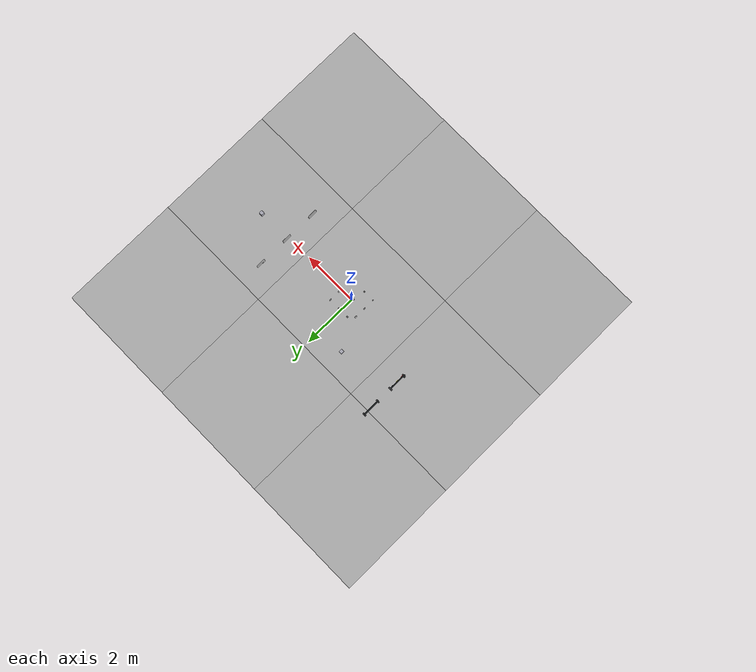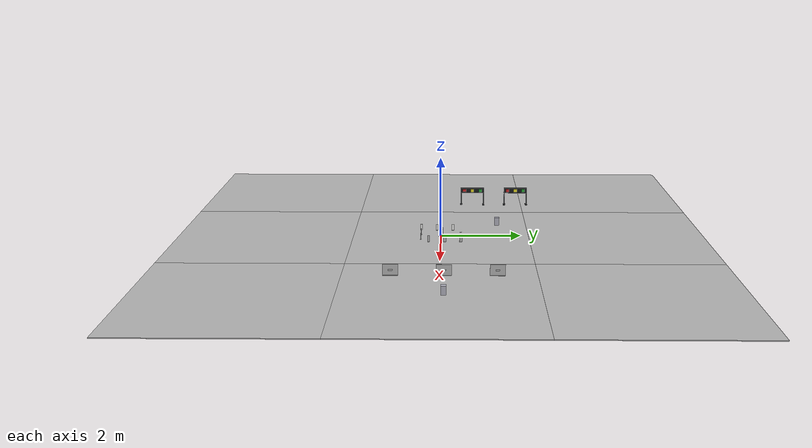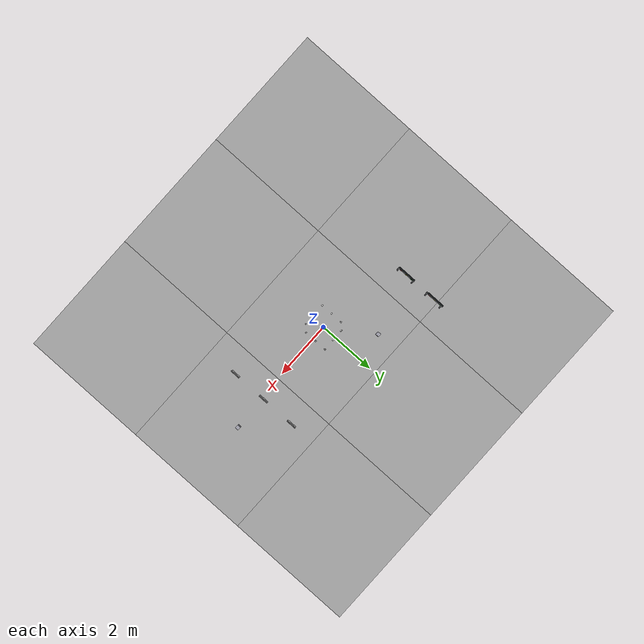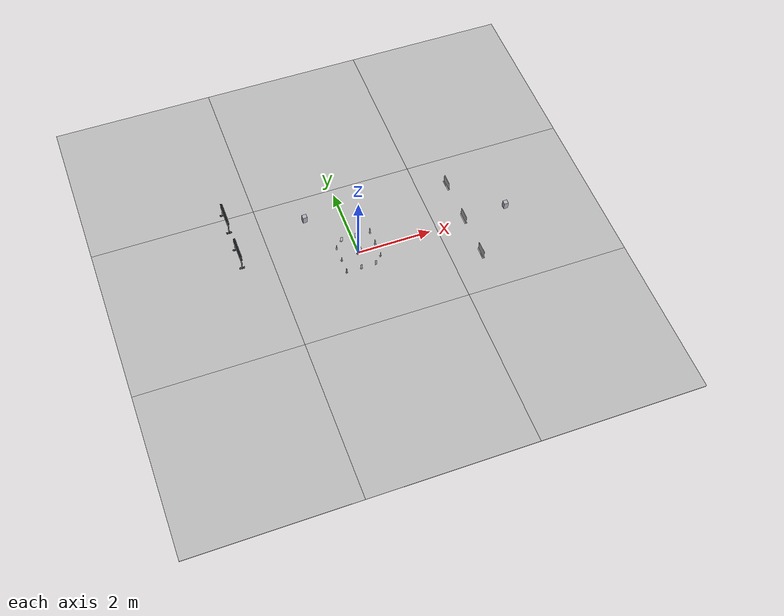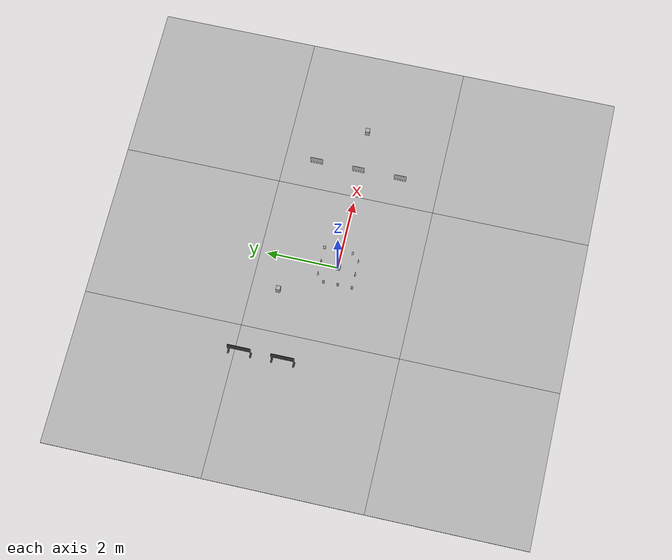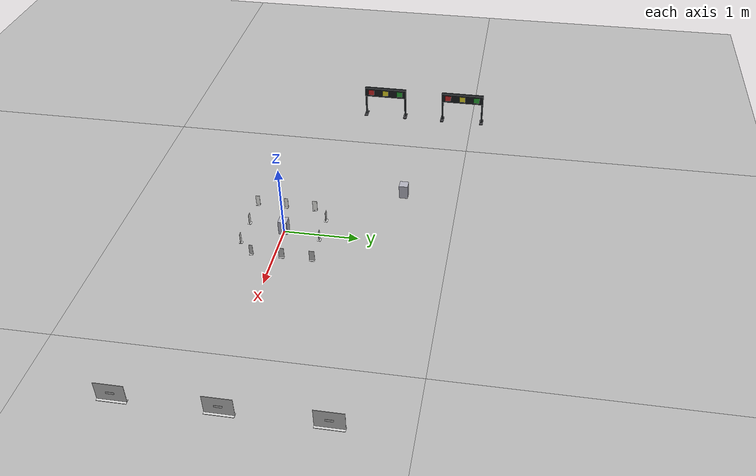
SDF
<?xml version="1.0" ?>
<!--
  采集专用世界 (auto-generated by tools/build_collect_world.py)

  工位 A 立牌圈: 10 个立牌围成圈, 正面全部朝圈心, 小车在圈心转圈拍
  工位 B 红绿灯: 2 个灯正面朝 +x 摆一排, 车从 +x 侧固定距离正对拍
  工位 C 车牌:   3 辆车车牌朝 +x 摆一排, 车从 +x 侧固定距离正对拍
-->
<sdf version="1.6">
  <world name="collect">

    <!-- 物理步进: 与比赛场地保持一致 (见 build_arena.py / issue #5) -->
    <physics name="collect_physics" default="0" type="ode">
      <max_step_size>0.002</max_step_size>
      <real_time_factor>1.0</real_time_factor>
      <real_time_update_rate>500</real_time_update_rate>
      <ode><solver><type>quick</type><iters>50</iters><sor>1.3</sor>
      </solver></ode>
    </physics>

    <include><uri>model://sun</uri></include>

    <!-- ================= 地面: 3x3 平铺, 与比赛场地同观感 ============ -->
    <model name="floor_0_0">
          <static>true</static>
          <pose>-4.400 -4.400 -0.0100 0 0 0</pose>
          <link name="link">
            <collision name="collision">
              <geometry><box><size>4.4 4.4 0.0200</size></box></geometry>
              <surface><friction><ode><mu>1.0</mu><mu2>1.0</mu2></ode></friction>
                <contact><ode><kp>1e10</kp><kd>1</kd></ode></contact></surface>
            </collision>
            <visual name="visual">
              <geometry><box><size>4.4 4.4 0.0200</size></box></geometry>
              <material><script>
                <uri>file://media/materials/scripts/arena.material</uri>
                <name>Arena/Floor</name>
              </script></material>
            </visual>
          </link>
        </model>
    <model name="floor_0_1">
          <static>true</static>
          <pose>-4.400 0.000 -0.0100 0 0 0</pose>
          <link name="link">
            <collision name="collision">
              <geometry><box><size>4.4 4.4 0.0200</size></box></geometry>
              <surface><friction><ode><mu>1.0</mu><mu2>1.0</mu2></ode></friction>
                <contact><ode><kp>1e10</kp><kd>1</kd></ode></contact></surface>
            </collision>
            <visual name="visual">
              <geometry><box><size>4.4 4.4 0.0200</size></box></geometry>
              <material><script>
                <uri>file://media/materials/scripts/arena.material</uri>
                <name>Arena/Floor</name>
              </script></material>
            </visual>
          </link>
        </model>
    <model name="floor_0_2">
          <static>true</static>
          <pose>-4.400 4.400 -0.0100 0 0 0</pose>
          <link name="link">
            <collision name="collision">
              <geometry><box><size>4.4 4.4 0.0200</size></box></geometry>
              <surface><friction><ode><mu>1.0</mu><mu2>1.0</mu2></ode></friction>
                <contact><ode><kp>1e10</kp><kd>1</kd></ode></contact></surface>
            </collision>
            <visual name="visual">
              <geometry><box><size>4.4 4.4 0.0200</size></box></geometry>
              <material><script>
                <uri>file://media/materials/scripts/arena.material</uri>
                <name>Arena/Floor</name>
              </script></material>
            </visual>
          </link>
        </model>
    <model name="floor_1_0">
          <static>true</static>
          <pose>0.000 -4.400 -0.0100 0 0 0</pose>
          <link name="link">
            <collision name="collision">
              <geometry><box><size>4.4 4.4 0.0200</size></box></geometry>
              <surface><friction><ode><mu>1.0</mu><mu2>1.0</mu2></ode></friction>
                <contact><ode><kp>1e10</kp><kd>1</kd></ode></contact></surface>
            </collision>
            <visual name="visual">
              <geometry><box><size>4.4 4.4 0.0200</size></box></geometry>
              <material><script>
                <uri>file://media/materials/scripts/arena.material</uri>
                <name>Arena/Floor</name>
              </script></material>
            </visual>
          </link>
        </model>
    <model name="floor_1_1">
          <static>true</static>
          <pose>0.000 0.000 -0.0100 0 0 0</pose>
          <link name="link">
            <collision name="collision">
              <geometry><box><size>4.4 4.4 0.0200</size></box></geometry>
              <surface><friction><ode><mu>1.0</mu><mu2>1.0</mu2></ode></friction>
                <contact><ode><kp>1e10</kp><kd>1</kd></ode></contact></surface>
            </collision>
            <visual name="visual">
              <geometry><box><size>4.4 4.4 0.0200</size></box></geometry>
              <material><script>
                <uri>file://media/materials/scripts/arena.material</uri>
                <name>Arena/Floor</name>
              </script></material>
            </visual>
          </link>
        </model>
    <model name="floor_1_2">
          <static>true</static>
          <pose>0.000 4.400 -0.0100 0 0 0</pose>
          <link name="link">
            <collision name="collision">
              <geometry><box><size>4.4 4.4 0.0200</size></box></geometry>
              <surface><friction><ode><mu>1.0</mu><mu2>1.0</mu2></ode></friction>
                <contact><ode><kp>1e10</kp><kd>1</kd></ode></contact></surface>
            </collision>
            <visual name="visual">
              <geometry><box><size>4.4 4.4 0.0200</size></box></geometry>
              <material><script>
                <uri>file://media/materials/scripts/arena.material</uri>
                <name>Arena/Floor</name>
              </script></material>
            </visual>
          </link>
        </model>
    <model name="floor_2_0">
          <static>true</static>
          <pose>4.400 -4.400 -0.0100 0 0 0</pose>
          <link name="link">
            <collision name="collision">
              <geometry><box><size>4.4 4.4 0.0200</size></box></geometry>
              <surface><friction><ode><mu>1.0</mu><mu2>1.0</mu2></ode></friction>
                <contact><ode><kp>1e10</kp><kd>1</kd></ode></contact></surface>
            </collision>
            <visual name="visual">
              <geometry><box><size>4.4 4.4 0.0200</size></box></geometry>
              <material><script>
                <uri>file://media/materials/scripts/arena.material</uri>
                <name>Arena/Floor</name>
              </script></material>
            </visual>
          </link>
        </model>
    <model name="floor_2_1">
          <static>true</static>
          <pose>4.400 0.000 -0.0100 0 0 0</pose>
          <link name="link">
            <collision name="collision">
              <geometry><box><size>4.4 4.4 0.0200</size></box></geometry>
              <surface><friction><ode><mu>1.0</mu><mu2>1.0</mu2></ode></friction>
                <contact><ode><kp>1e10</kp><kd>1</kd></ode></contact></surface>
            </collision>
            <visual name="visual">
              <geometry><box><size>4.4 4.4 0.0200</size></box></geometry>
              <material><script>
                <uri>file://media/materials/scripts/arena.material</uri>
                <name>Arena/Floor</name>
              </script></material>
            </visual>
          </link>
        </model>
    <model name="floor_2_2">
          <static>true</static>
          <pose>4.400 4.400 -0.0100 0 0 0</pose>
          <link name="link">
            <collision name="collision">
              <geometry><box><size>4.4 4.4 0.0200</size></box></geometry>
              <surface><friction><ode><mu>1.0</mu><mu2>1.0</mu2></ode></friction>
                <contact><ode><kp>1e10</kp><kd>1</kd></ode></contact></surface>
            </collision>
            <visual name="visual">
              <geometry><box><size>4.4 4.4 0.0200</size></box></geometry>
              <material><script>
                <uri>file://media/materials/scripts/arena.material</uri>
                <name>Arena/Floor</name>
              </script></material>
            </visual>
          </link>
        </model>
    <include><uri>model://collect_rig_1</uri><name>collect_rig_1</name><pose>0.000 0.000 0 0 0 0.000000</pose></include>
    <include><uri>model://collect_rig_2</uri><name>collect_rig_2</name><pose>-1.000 1.450 0 0 0 0.000000</pose></include>
    <include><uri>model://collect_rig_3</uri><name>collect_rig_3</name><pose>4.200 0.100 0 0 0 3.141593</pose></include>

    <!-- ================= A 立牌圈 (正面全部朝圈心) ================= -->
    <include><uri>model://standee_c01</uri><name>ring_01</name><pose>-0.3000 0.5000 0 0 0 -1.570796</pose></include>
    <include><uri>model://standee_c02</uri><name>ring_02</name><pose>0.1000 0.5000 0 0 0 -1.570796</pose></include>
    <include><uri>model://standee_c03</uri><name>ring_03</name><pose>0.5000 0.5000 0 0 0 -3.141593</pose></include>
    <include><uri>model://standee_c04</uri><name>ring_04</name><pose>0.5000 0.1000 0 0 0 -3.141593</pose></include>
    <include><uri>model://standee_c05</uri><name>ring_05</name><pose>0.5000 -0.3000 0 0 0 -3.141593</pose></include>
    <include><uri>model://standee_c06</uri><name>ring_06</name><pose>0.3000 -0.5000 0 0 0 1.570796</pose></include>
    <include><uri>model://standee_c07</uri><name>ring_07</name><pose>-0.1000 -0.5000 0 0 0 1.570796</pose></include>
    <include><uri>model://standee_c08</uri><name>ring_08</name><pose>-0.5000 -0.5000 0 0 0 -0.000000</pose></include>
    <include><uri>model://standee_F1</uri><name>ring_09</name><pose>-0.5000 -0.1000 0 0 0 -0.000000</pose></include>
    <include><uri>model://standee_F2</uri><name>ring_10</name><pose>-0.5000 0.3000 0 0 0 -0.000000</pose></include>

    <!-- ================= B 红绿灯 (正面朝 +x) ==================== -->
    <include><uri>model://traffic_light_h</uri><name>tl_top</name><pose>-3.000 2.050 0.002 0 0 0</pose></include>
    <include><uri>model://traffic_light_h</uri><name>tl_bot</name><pose>-3.000 0.850 0.002 0 0 0</pose></include>

    <!-- ================= C 车牌 (车牌朝 +x) ====================== -->
    <include><uri>model://car_1</uri><name>car_1</name><pose>3.000 -1.100 0 0 0 0.000000</pose></include>
    <include><uri>model://car_2</uri><name>car_2</name><pose>3.000 0.100 0 0 0 0.000000</pose></include>
    <include><uri>model://car_3</uri><name>car_3</name><pose>3.000 1.300 0 0 0 0.000000</pose></include>

  </world>
</sdf>

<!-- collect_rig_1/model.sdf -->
<sdf version="1.6">
  <model name="collect_rig_1">
    <static>false</static>
    <link name="link">
      <gravity>false</gravity>
      <inertial><mass>0.5</mass>
        <inertia><ixx>0.01</ixx><ixy>0</ixy><ixz>0</ixz>
                 <iyy>0.01</iyy><iyz>0</iyz><izz>0.01</izz></inertia></inertial>
      <visual name="cam_body">
        <pose>0 0 0.10 0 0 0</pose>
        <geometry><box><size>0.12 0.12 0.20</size></box></geometry>
        <material><ambient>0.6 0.6 0.65 1</ambient><diffuse>0.7 0.7 0.75 1</diffuse>
        </material>
      </visual>
      <sensor name="camera" type="camera">
        <always_on>true</always_on>
        <update_rate>15</update_rate>
        <visualize>false</visualize>
        <camera>
          <horizontal_fov>1.012291</horizontal_fov>
          <image><width>1280</width><height>960</height><format>R8G8B8</format></image>
          <clip><near>0.05</near><far>20</far></clip>
        </camera>
        <plugin name="camera_plugin" filename="libgazebo_ros_camera.so">
          <robotNamespace>/rig1</robotNamespace>
          <cameraName>camera</cameraName>
          <frameName>camera_link</frameName>
          <imageTopicName>rgb/image_raw</imageTopicName>
          <cameraInfoTopicName>rgb/camera_info</cameraInfoTopicName>
        </plugin>
      </sensor>
    </link>
  </model>
</sdf>

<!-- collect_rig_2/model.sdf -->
<sdf version="1.6">
  <model name="collect_rig_2">
    <static>false</static>
    <link name="link">
      <gravity>false</gravity>
      <inertial><mass>0.5</mass>
        <inertia><ixx>0.01</ixx><ixy>0</ixy><ixz>0</ixz>
                 <iyy>0.01</iyy><iyz>0</iyz><izz>0.01</izz></inertia></inertial>
      <visual name="cam_body">
        <pose>0 0 0.10 0 0 0</pose>
        <geometry><box><size>0.12 0.12 0.20</size></box></geometry>
        <material><ambient>0.6 0.6 0.65 1</ambient><diffuse>0.7 0.7 0.75 1</diffuse>
        </material>
      </visual>
      <sensor name="camera" type="camera">
        <always_on>true</always_on>
        <update_rate>15</update_rate>
        <visualize>false</visualize>
        <camera>
          <horizontal_fov>1.012291</horizontal_fov>
          <image><width>1280</width><height>960</height><format>R8G8B8</format></image>
          <clip><near>0.05</near><far>20</far></clip>
        </camera>
        <plugin name="camera_plugin" filename="libgazebo_ros_camera.so">
          <robotNamespace>/rig2</robotNamespace>
          <cameraName>camera</cameraName>
          <frameName>camera_link</frameName>
          <imageTopicName>rgb/image_raw</imageTopicName>
          <cameraInfoTopicName>rgb/camera_info</cameraInfoTopicName>
        </plugin>
      </sensor>
    </link>
  </model>
</sdf>

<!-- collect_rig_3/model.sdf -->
<sdf version="1.6">
  <model name="collect_rig_3">
    <static>false</static>
    <link name="link">
      <gravity>false</gravity>
      <inertial><mass>0.5</mass>
        <inertia><ixx>0.01</ixx><ixy>0</ixy><ixz>0</ixz>
                 <iyy>0.01</iyy><iyz>0</iyz><izz>0.01</izz></inertia></inertial>
      <visual name="cam_body">
        <pose>0 0 0.10 0 0 0</pose>
        <geometry><box><size>0.12 0.12 0.20</size></box></geometry>
        <material><ambient>0.6 0.6 0.65 1</ambient><diffuse>0.7 0.7 0.75 1</diffuse>
        </material>
      </visual>
      <sensor name="camera" type="camera">
        <always_on>true</always_on>
        <update_rate>15</update_rate>
        <visualize>false</visualize>
        <camera>
          <horizontal_fov>1.012291</horizontal_fov>
          <image><width>1280</width><height>960</height><format>R8G8B8</format></image>
          <clip><near>0.05</near><far>20</far></clip>
        </camera>
        <plugin name="camera_plugin" filename="libgazebo_ros_camera.so">
          <robotNamespace>/rig3</robotNamespace>
          <cameraName>camera</cameraName>
          <frameName>camera_link</frameName>
          <imageTopicName>rgb/image_raw</imageTopicName>
          <cameraInfoTopicName>rgb/camera_info</cameraInfoTopicName>
        </plugin>
      </sensor>
    </link>
  </model>
</sdf>

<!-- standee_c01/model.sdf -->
<sdf version="1.7">
  <model name="standee_c01">
    <static>true</static>
    <link name="link">
      <visual name="board">
        <pose>0 0 0.0790 0 0 0</pose>
        <geometry><box><size>0.0050 0.0661 0.1500</size></box></geometry>
        <material><ambient>0.94 0.94 0.93 1</ambient><diffuse>0.94 0.94 0.93 1</diffuse></material>
      </visual>
      <visual name="art">
        <pose>-0.0020 0 0.0790 0 0 0</pose>
        <geometry><box><size>0.0012 0.0661 0.1500</size></box></geometry>
        <material>
          <script>
            <uri>model://standee_c01/materials/scripts</uri>
            <uri>model://standee_c01/materials/textures</uri>
            <name>Standee/c01</name>
          </script>
        </material>
      </visual>
      <visual name="base">
        <pose>0 0 0.0020 0 0 0</pose>
        <geometry><box><size>0.0450 0.0661 0.0040</size></box></geometry>
        <material><ambient>0.92 0.92 0.92 1</ambient><diffuse>0.92 0.92 0.92 1</diffuse></material>
      </visual>
      <collision name="col">
        <pose>0 0 0.0790 0 0 0</pose>
        <geometry><box><size>0.0050 0.0500 0.1500</size></box></geometry>
      </collision>
      <collision name="base_c">
        <pose>0 0 0.0020 0 0 0</pose>
        <geometry><box><size>0.0450 0.0661 0.0040</size></box></geometry>
      </collision>
    </link>
  </model>
</sdf>

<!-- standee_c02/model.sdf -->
<sdf version="1.7">
  <model name="standee_c02">
    <static>true</static>
    <link name="link">
      <visual name="board">
        <pose>0 0 0.0790 0 0 0</pose>
        <geometry><box><size>0.0050 0.0542 0.1500</size></box></geometry>
        <material><ambient>0.94 0.94 0.93 1</ambient><diffuse>0.94 0.94 0.93 1</diffuse></material>
      </visual>
      <visual name="art">
        <pose>-0.0020 0 0.0790 0 0 0</pose>
        <geometry><box><size>0.0012 0.0542 0.1500</size></box></geometry>
        <material>
          <script>
            <uri>model://standee_c02/materials/scripts</uri>
            <uri>model://standee_c02/materials/textures</uri>
            <name>Standee/c02</name>
          </script>
        </material>
      </visual>
      <visual name="base">
        <pose>0 0 0.0020 0 0 0</pose>
        <geometry><box><size>0.0450 0.0542 0.0040</size></box></geometry>
        <material><ambient>0.92 0.92 0.92 1</ambient><diffuse>0.92 0.92 0.92 1</diffuse></material>
      </visual>
      <collision name="col">
        <pose>0 0 0.0790 0 0 0</pose>
        <geometry><box><size>0.0050 0.0500 0.1500</size></box></geometry>
      </collision>
      <collision name="base_c">
        <pose>0 0 0.0020 0 0 0</pose>
        <geometry><box><size>0.0450 0.0542 0.0040</size></box></geometry>
      </collision>
    </link>
  </model>
</sdf>

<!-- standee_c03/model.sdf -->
<sdf version="1.7">
  <model name="standee_c03">
    <static>true</static>
    <link name="link">
      <visual name="board">
        <pose>0 0 0.0790 0 0 0</pose>
        <geometry><box><size>0.0050 0.0702 0.1500</size></box></geometry>
        <material><ambient>0.94 0.94 0.93 1</ambient><diffuse>0.94 0.94 0.93 1</diffuse></material>
      </visual>
      <visual name="art">
        <pose>-0.0020 0 0.0790 0 0 0</pose>
        <geometry><box><size>0.0012 0.0702 0.1500</size></box></geometry>
        <material>
          <script>
            <uri>model://standee_c03/materials/scripts</uri>
            <uri>model://standee_c03/materials/textures</uri>
            <name>Standee/c03</name>
          </script>
        </material>
      </visual>
      <visual name="base">
        <pose>0 0 0.0020 0 0 0</pose>
        <geometry><box><size>0.0450 0.0702 0.0040</size></box></geometry>
        <material><ambient>0.92 0.92 0.92 1</ambient><diffuse>0.92 0.92 0.92 1</diffuse></material>
      </visual>
      <collision name="col">
        <pose>0 0 0.0790 0 0 0</pose>
        <geometry><box><size>0.0050 0.0500 0.1500</size></box></geometry>
      </collision>
      <collision name="base_c">
        <pose>0 0 0.0020 0 0 0</pose>
        <geometry><box><size>0.0450 0.0702 0.0040</size></box></geometry>
      </collision>
    </link>
  </model>
</sdf>

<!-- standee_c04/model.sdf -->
<sdf version="1.7">
  <model name="standee_c04">
    <static>true</static>
    <link name="link">
      <visual name="board">
        <pose>0 0 0.0790 0 0 0</pose>
        <geometry><box><size>0.0050 0.0703 0.1500</size></box></geometry>
        <material><ambient>0.94 0.94 0.93 1</ambient><diffuse>0.94 0.94 0.93 1</diffuse></material>
      </visual>
      <visual name="art">
        <pose>-0.0020 0 0.0790 0 0 0</pose>
        <geometry><box><size>0.0012 0.0703 0.1500</size></box></geometry>
        <material>
          <script>
            <uri>model://standee_c04/materials/scripts</uri>
            <uri>model://standee_c04/materials/textures</uri>
            <name>Standee/c04</name>
          </script>
        </material>
      </visual>
      <visual name="base">
        <pose>0 0 0.0020 0 0 0</pose>
        <geometry><box><size>0.0450 0.0703 0.0040</size></box></geometry>
        <material><ambient>0.92 0.92 0.92 1</ambient><diffuse>0.92 0.92 0.92 1</diffuse></material>
      </visual>
      <collision name="col">
        <pose>0 0 0.0790 0 0 0</pose>
        <geometry><box><size>0.0050 0.0500 0.1500</size></box></geometry>
      </collision>
      <collision name="base_c">
        <pose>0 0 0.0020 0 0 0</pose>
        <geometry><box><size>0.0450 0.0703 0.0040</size></box></geometry>
      </collision>
    </link>
  </model>
</sdf>

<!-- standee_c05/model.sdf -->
<sdf version="1.7">
  <model name="standee_c05">
    <static>true</static>
    <link name="link">
      <visual name="board">
        <pose>0 0 0.0790 0 0 0</pose>
        <geometry><box><size>0.0050 0.0476 0.1500</size></box></geometry>
        <material><ambient>0.94 0.94 0.93 1</ambient><diffuse>0.94 0.94 0.93 1</diffuse></material>
      </visual>
      <visual name="art">
        <pose>-0.0020 0 0.0790 0 0 0</pose>
        <geometry><box><size>0.0012 0.0476 0.1500</size></box></geometry>
        <material>
          <script>
            <uri>model://standee_c05/materials/scripts</uri>
            <uri>model://standee_c05/materials/textures</uri>
            <name>Standee/c05</name>
          </script>
        </material>
      </visual>
      <visual name="base">
        <pose>0 0 0.0020 0 0 0</pose>
        <geometry><box><size>0.0450 0.0476 0.0040</size></box></geometry>
        <material><ambient>0.92 0.92 0.92 1</ambient><diffuse>0.92 0.92 0.92 1</diffuse></material>
      </visual>
      <collision name="col">
        <pose>0 0 0.0790 0 0 0</pose>
        <geometry><box><size>0.0050 0.0500 0.1500</size></box></geometry>
      </collision>
      <collision name="base_c">
        <pose>0 0 0.0020 0 0 0</pose>
        <geometry><box><size>0.0450 0.0476 0.0040</size></box></geometry>
      </collision>
    </link>
  </model>
</sdf>

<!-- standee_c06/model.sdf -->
<sdf version="1.7">
  <model name="standee_c06">
    <static>true</static>
    <link name="link">
      <visual name="board">
        <pose>0 0 0.0790 0 0 0</pose>
        <geometry><box><size>0.0050 0.0460 0.1500</size></box></geometry>
        <material><ambient>0.94 0.94 0.93 1</ambient><diffuse>0.94 0.94 0.93 1</diffuse></material>
      </visual>
      <visual name="art">
        <pose>-0.0020 0 0.0790 0 0 0</pose>
        <geometry><box><size>0.0012 0.0460 0.1500</size></box></geometry>
        <material>
          <script>
            <uri>model://standee_c06/materials/scripts</uri>
            <uri>model://standee_c06/materials/textures</uri>
            <name>Standee/c06</name>
          </script>
        </material>
      </visual>
      <visual name="base">
        <pose>0 0 0.0020 0 0 0</pose>
        <geometry><box><size>0.0450 0.0460 0.0040</size></box></geometry>
        <material><ambient>0.92 0.92 0.92 1</ambient><diffuse>0.92 0.92 0.92 1</diffuse></material>
      </visual>
      <collision name="col">
        <pose>0 0 0.0790 0 0 0</pose>
        <geometry><box><size>0.0050 0.0500 0.1500</size></box></geometry>
      </collision>
      <collision name="base_c">
        <pose>0 0 0.0020 0 0 0</pose>
        <geometry><box><size>0.0450 0.0460 0.0040</size></box></geometry>
      </collision>
    </link>
  </model>
</sdf>

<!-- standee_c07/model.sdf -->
<sdf version="1.7">
  <model name="standee_c07">
    <static>true</static>
    <link name="link">
      <visual name="board">
        <pose>0 0 0.0790 0 0 0</pose>
        <geometry><box><size>0.0050 0.0579 0.1500</size></box></geometry>
        <material><ambient>0.94 0.94 0.93 1</ambient><diffuse>0.94 0.94 0.93 1</diffuse></material>
      </visual>
      <visual name="art">
        <pose>-0.0020 0 0.0790 0 0 0</pose>
        <geometry><box><size>0.0012 0.0579 0.1500</size></box></geometry>
        <material>
          <script>
            <uri>model://standee_c07/materials/scripts</uri>
            <uri>model://standee_c07/materials/textures</uri>
            <name>Standee/c07</name>
          </script>
        </material>
      </visual>
      <visual name="base">
        <pose>0 0 0.0020 0 0 0</pose>
        <geometry><box><size>0.0450 0.0579 0.0040</size></box></geometry>
        <material><ambient>0.92 0.92 0.92 1</ambient><diffuse>0.92 0.92 0.92 1</diffuse></material>
      </visual>
      <collision name="col">
        <pose>0 0 0.0790 0 0 0</pose>
        <geometry><box><size>0.0050 0.0500 0.1500</size></box></geometry>
      </collision>
      <collision name="base_c">
        <pose>0 0 0.0020 0 0 0</pose>
        <geometry><box><size>0.0450 0.0579 0.0040</size></box></geometry>
      </collision>
    </link>
  </model>
</sdf>

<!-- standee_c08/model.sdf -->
<sdf version="1.7">
  <model name="standee_c08">
    <static>true</static>
    <link name="link">
      <visual name="board">
        <pose>0 0 0.0790 0 0 0</pose>
        <geometry><box><size>0.0050 0.0553 0.1500</size></box></geometry>
        <material><ambient>0.94 0.94 0.93 1</ambient><diffuse>0.94 0.94 0.93 1</diffuse></material>
      </visual>
      <visual name="art">
        <pose>-0.0020 0 0.0790 0 0 0</pose>
        <geometry><box><size>0.0012 0.0553 0.1500</size></box></geometry>
        <material>
          <script>
            <uri>model://standee_c08/materials/scripts</uri>
            <uri>model://standee_c08/materials/textures</uri>
            <name>Standee/c08</name>
          </script>
        </material>
      </visual>
      <visual name="base">
        <pose>0 0 0.0020 0 0 0</pose>
        <geometry><box><size>0.0450 0.0553 0.0040</size></box></geometry>
        <material><ambient>0.92 0.92 0.92 1</ambient><diffuse>0.92 0.92 0.92 1</diffuse></material>
      </visual>
      <collision name="col">
        <pose>0 0 0.0790 0 0 0</pose>
        <geometry><box><size>0.0050 0.0500 0.1500</size></box></geometry>
      </collision>
      <collision name="base_c">
        <pose>0 0 0.0020 0 0 0</pose>
        <geometry><box><size>0.0450 0.0553 0.0040</size></box></geometry>
      </collision>
    </link>
  </model>
</sdf>

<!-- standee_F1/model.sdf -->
<sdf version="1.7">
  <model name="standee_F1">
    <static>true</static>
    <link name="link">
      <visual name="board">
        <pose>0 0 0.0790 0 0 0</pose>
        <geometry><box><size>0.0050 0.0497 0.1500</size></box></geometry>
        <material><ambient>0.94 0.94 0.93 1</ambient><diffuse>0.94 0.94 0.93 1</diffuse></material>
      </visual>
      <visual name="art">
        <pose>-0.0020 0 0.0790 0 0 0</pose>
        <geometry><box><size>0.0012 0.0497 0.1500</size></box></geometry>
        <material>
          <script>
            <uri>model://standee_F1/materials/scripts</uri>
            <uri>model://standee_F1/materials/textures</uri>
            <name>Standee/F1</name>
          </script>
        </material>
      </visual>
      <visual name="base">
        <pose>0 0 0.0020 0 0 0</pose>
        <geometry><box><size>0.0450 0.0497 0.0040</size></box></geometry>
        <material><ambient>0.92 0.92 0.92 1</ambient><diffuse>0.92 0.92 0.92 1</diffuse></material>
      </visual>
      <collision name="col">
        <pose>0 0 0.0790 0 0 0</pose>
        <geometry><box><size>0.0050 0.0500 0.1500</size></box></geometry>
      </collision>
      <collision name="base_c">
        <pose>0 0 0.0020 0 0 0</pose>
        <geometry><box><size>0.0450 0.0497 0.0040</size></box></geometry>
      </collision>
    </link>
  </model>
</sdf>

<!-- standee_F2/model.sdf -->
<sdf version="1.7">
  <model name="standee_F2">
    <static>true</static>
    <link name="link">
      <visual name="board">
        <pose>0 0 0.0790 0 0 0</pose>
        <geometry><box><size>0.0050 0.0642 0.1500</size></box></geometry>
        <material><ambient>0.94 0.94 0.93 1</ambient><diffuse>0.94 0.94 0.93 1</diffuse></material>
      </visual>
      <visual name="art">
        <pose>-0.0020 0 0.0790 0 0 0</pose>
        <geometry><box><size>0.0012 0.0642 0.1500</size></box></geometry>
        <material>
          <script>
            <uri>model://standee_F2/materials/scripts</uri>
            <uri>model://standee_F2/materials/textures</uri>
            <name>Standee/F2</name>
          </script>
        </material>
      </visual>
      <visual name="base">
        <pose>0 0 0.0020 0 0 0</pose>
        <geometry><box><size>0.0450 0.0642 0.0040</size></box></geometry>
        <material><ambient>0.92 0.92 0.92 1</ambient><diffuse>0.92 0.92 0.92 1</diffuse></material>
      </visual>
      <collision name="col">
        <pose>0 0 0.0790 0 0 0</pose>
        <geometry><box><size>0.0050 0.0500 0.1500</size></box></geometry>
      </collision>
      <collision name="base_c">
        <pose>0 0 0.0020 0 0 0</pose>
        <geometry><box><size>0.0450 0.0642 0.0040</size></box></geometry>
      </collision>
    </link>
  </model>
</sdf>

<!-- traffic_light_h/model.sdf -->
<sdf version="1.7">
  <model name="traffic_light_h">
    <!-- 按官方尺寸生成, 见 tools/setup_traffic_lights.py 顶部说明 -->
    <static>false</static>
    <self_collide>false</self_collide>
    <link name="base">
      <gravity>false</gravity>
      <inertial><pose>0 0 0.410 0 0 0</pose><mass>8</mass><inertia><ixx>0.009</ixx><ixy>0</ixy><ixz>0</ixz><iyy>0.139</iyy><iyz>0</iyz><izz>0.143</izz></inertia></inertial>
      <visual name="housing"><pose>0 0 0.410 0 0 0</pose><geometry><box><size>0.050 0.640 0.140</size></box></geometry><material><ambient>0.090 0.102 0.110 1.00</ambient><diffuse>0.090 0.102 0.110 1.00</diffuse></material></visual>
      <collision name="housing_c"><pose>0 0 0.410 0 0 0</pose><geometry><box><size>0.050 0.640 0.140</size></box></geometry></collision>
      <visual name="post0"><pose>0 -0.307 0.170 0 0 0</pose><geometry><box><size>0.025 0.025 0.340</size></box></geometry><material><ambient>0.090 0.102 0.110 1.00</ambient><diffuse>0.090 0.102 0.110 1.00</diffuse></material></visual>
      <collision name="post0_c"><pose>0 -0.307 0.170 0 0 0</pose><geometry><box><size>0.025 0.025 0.340</size></box></geometry><surface><friction><ode><mu>5.0</mu><mu2>5.0</mu2></ode></friction></surface></collision>
      <visual name="foot0"><pose>0 -0.307 0.006 0 0 0</pose><geometry><box><size>0.140 0.050 0.012</size></box></geometry><material><ambient>0.25 0.25 0.26 1</ambient><diffuse>0.25 0.25 0.26 1</diffuse></material></visual>
      <collision name="foot0_c"><pose>0 -0.307 0.006 0 0 0</pose><geometry><box><size>0.140 0.050 0.012</size></box></geometry><surface><friction><ode><mu>5.0</mu><mu2>5.0</mu2></ode></friction></surface></collision>
      <visual name="post1"><pose>0 0.307 0.170 0 0 0</pose><geometry><box><size>0.025 0.025 0.340</size></box></geometry><material><ambient>0.090 0.102 0.110 1.00</ambient><diffuse>0.090 0.102 0.110 1.00</diffuse></material></visual>
      <collision name="post1_c"><pose>0 0.307 0.170 0 0 0</pose><geometry><box><size>0.025 0.025 0.340</size></box></geometry><surface><friction><ode><mu>5.0</mu><mu2>5.0</mu2></ode></friction></surface></collision>
      <visual name="foot1"><pose>0 0.307 0.006 0 0 0</pose><geometry><box><size>0.140 0.050 0.012</size></box></geometry><material><ambient>0.25 0.25 0.26 1</ambient><diffuse>0.25 0.25 0.26 1</diffuse></material></visual>
      <collision name="foot1_c"><pose>0 0.307 0.006 0 0 0</pose><geometry><box><size>0.140 0.050 0.012</size></box></geometry><surface><friction><ode><mu>5.0</mu><mu2>5.0</mu2></ode></friction></surface></collision>
      <visual name="lens_red"><pose>0.0255 -0.220 0.410 0 1.5708 0</pose><geometry><cylinder><radius>0.0425</radius><length>0.0060</length></cylinder></geometry><material><ambient>0.090 0.102 0.110 1.00</ambient><diffuse>0.090 0.102 0.110 1.00</diffuse></material></visual>
      <visual name="lensface_red"><pose>0.0291 -0.220 0.410 0 0 0</pose><geometry><box><size>0.0012 0.0860 0.0860</size></box></geometry><material><script><uri>model://traffic_light_h/materials/scripts</uri><uri>model://traffic_light_h/materials/textures</uri><name>LightLens/red_off</name></script></material></visual>
      <visual name="lens_yellow"><pose>0.0255 0.000 0.410 0 1.5708 0</pose><geometry><cylinder><radius>0.0425</radius><length>0.0060</length></cylinder></geometry><material><ambient>0.090 0.102 0.110 1.00</ambient><diffuse>0.090 0.102 0.110 1.00</diffuse></material></visual>
      <visual name="lensface_yellow"><pose>0.0291 0.000 0.410 0 0 0</pose><geometry><box><size>0.0012 0.0860 0.0860</size></box></geometry><material><script><uri>model://traffic_light_h/materials/scripts</uri><uri>model://traffic_light_h/materials/textures</uri><name>LightLens/yellow_off</name></script></material></visual>
      <visual name="lens_green"><pose>0.0255 0.220 0.410 0 1.5708 0</pose><geometry><cylinder><radius>0.0425</radius><length>0.0060</length></cylinder></geometry><material><ambient>0.090 0.102 0.110 1.00</ambient><diffuse>0.090 0.102 0.110 1.00</diffuse></material></visual>
      <visual name="lensface_green"><pose>0.0291 0.220 0.410 0 0 0</pose><geometry><box><size>0.0012 0.0860 0.0860</size></box></geometry><material><script><uri>model://traffic_light_h/materials/scripts</uri><uri>model://traffic_light_h/materials/textures</uri><name>LightLens/green_off</name></script></material></visual>
    </link>
    <link name="lamp_red"><gravity>false</gravity><pose>0.0000 -0.220 0.410 0 0 0</pose><inertial><mass>0.02</mass><inertia><ixx>1e-5</ixx><ixy>0</ixy><ixz>0</ixz><iyy>1e-5</iyy><iyz>0</iyz><izz>1e-5</izz></inertia></inertial><visual name="lamp"><pose>0 0 0 0 1.5708 0</pose><geometry><cylinder><radius>0.0425</radius><length>0.0040</length></cylinder></geometry><material><ambient>0.969 0.227 0.086 1.00</ambient><diffuse>0.969 0.227 0.086 1.00</diffuse><emissive>0.969 0.227 0.086 1.00</emissive></material></visual><visual name="lampface"><pose>0.0026 0 0 0 0 0</pose><geometry><box><size>0.0012 0.0860 0.0860</size></box></geometry><material><script><uri>model://traffic_light_h/materials/scripts</uri><uri>model://traffic_light_h/materials/textures</uri><name>LightLamp/red_on</name></script></material></visual></link>
    <joint name="j_red" type="prismatic"><parent>base</parent><child>lamp_red</child><pose>0 0 0 0 0 0</pose><axis><xyz>1 0 0</xyz><limit><lower>0.000</lower><upper>0.035</upper><effort>1</effort><velocity>1</velocity></limit></axis></joint>
    <link name="lamp_yellow"><gravity>false</gravity><pose>0.0000 0.000 0.410 0 0 0</pose><inertial><mass>0.02</mass><inertia><ixx>1e-5</ixx><ixy>0</ixy><ixz>0</ixz><iyy>1e-5</iyy><iyz>0</iyz><izz>1e-5</izz></inertia></inertial><visual name="lamp"><pose>0 0 0 0 1.5708 0</pose><geometry><cylinder><radius>0.0425</radius><length>0.0040</length></cylinder></geometry><material><ambient>0.988 0.976 0.188 1.00</ambient><diffuse>0.988 0.976 0.188 1.00</diffuse><emissive>0.988 0.976 0.188 1.00</emissive></material></visual><visual name="lampface"><pose>0.0026 0 0 0 0 0</pose><geometry><box><size>0.0012 0.0860 0.0860</size></box></geometry><material><script><uri>model://traffic_light_h/materials/scripts</uri><uri>model://traffic_light_h/materials/textures</uri><name>LightLamp/yellow_on</name></script></material></visual></link>
    <joint name="j_yellow" type="prismatic"><parent>base</parent><child>lamp_yellow</child><pose>0 0 0 0 0 0</pose><axis><xyz>1 0 0</xyz><limit><lower>0.000</lower><upper>0.035</upper><effort>1</effort><velocity>1</velocity></limit></axis></joint>
    <link name="lamp_green"><gravity>false</gravity><pose>0.0000 0.220 0.410 0 0 0</pose><inertial><mass>0.02</mass><inertia><ixx>1e-5</ixx><ixy>0</ixy><ixz>0</ixz><iyy>1e-5</iyy><iyz>0</iyz><izz>1e-5</izz></inertia></inertial><visual name="lamp"><pose>0 0 0 0 1.5708 0</pose><geometry><cylinder><radius>0.0425</radius><length>0.0040</length></cylinder></geometry><material><ambient>0.086 0.941 0.529 1.00</ambient><diffuse>0.086 0.941 0.529 1.00</diffuse><emissive>0.086 0.941 0.529 1.00</emissive></material></visual><visual name="lampface"><pose>0.0026 0 0 0 0 0</pose><geometry><box><size>0.0012 0.0860 0.0860</size></box></geometry><material><script><uri>model://traffic_light_h/materials/scripts</uri><uri>model://traffic_light_h/materials/textures</uri><name>LightLamp/green_on</name></script></material></visual></link>
    <joint name="j_green" type="prismatic"><parent>base</parent><child>lamp_green</child><pose>0 0 0 0 0 0</pose><axis><xyz>1 0 0</xyz><limit><lower>0.000</lower><upper>0.035</upper><effort>1</effort><velocity>1</velocity></limit></axis></joint>
  </model>
</sdf>

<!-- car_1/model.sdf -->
<sdf version="1.7">
  <model name="car_1">
    <!-- 车辆立牌 + 车牌 (陕G·5JXFN)
         车板 0.345 x 0.250 x 0.005 m (官方 34.5 x 25 cm x 5mm)
         车牌 0.095 x 0.030 m (官方 9.5 x 3 cm), 贴在正面后保险杠中间 -->
    <static>true</static>
    <link name="link">
      <visual name="body">
        <pose>0 0 0.1310 0 0 0</pose>
        <geometry><box><size>0.0050 0.3450 0.2500</size></box></geometry>
        <material><script>
          <uri>model://car_1/materials/scripts</uri>
          <uri>model://car_1/materials/textures</uri>
          <name>Car/Body_car_1</name>
        </script></material>
      </visual>
      <visual name="plate">
        <pose>0.0040 0.0000 0.1225 0 0 0</pose>
        <geometry><box><size>0.0030 0.0950 0.0300</size></box></geometry>
        <material><script>
          <uri>model://car_1/materials/scripts</uri>
          <uri>model://car_1/materials/textures</uri>
          <name>Car/Plate_car_1</name>
        </script></material>
      </visual>
      <visual name="base">
        <pose>0 0 0.0030 0 0 0</pose>
        <geometry><box><size>0.060 0.3450 0.0060</size></box></geometry>
        <material><ambient>0.85 0.85 0.85 1</ambient><diffuse>0.85 0.85 0.85 1</diffuse></material>
      </visual>
      <collision name="col">
        <pose>0 0 0.1310 0 0 0</pose>
        <geometry><box><size>0.0050 0.3450 0.2500</size></box></geometry>
      </collision>
      <collision name="base_c">
        <pose>0 0 0.0030 0 0 0</pose>
        <geometry><box><size>0.060 0.3450 0.0060</size></box></geometry>
      </collision>
    </link>
  </model>
</sdf>

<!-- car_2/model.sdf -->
<sdf version="1.7">
  <model name="car_2">
    <!-- 车辆立牌 + 车牌 (陕W·5QG5S)
         车板 0.345 x 0.250 x 0.005 m (官方 34.5 x 25 cm x 5mm)
         车牌 0.095 x 0.030 m (官方 9.5 x 3 cm), 贴在正面后保险杠中间 -->
    <static>true</static>
    <link name="link">
      <visual name="body">
        <pose>0 0 0.1310 0 0 0</pose>
        <geometry><box><size>0.0050 0.3450 0.2500</size></box></geometry>
        <material><script>
          <uri>model://car_2/materials/scripts</uri>
          <uri>model://car_2/materials/textures</uri>
          <name>Car/Body_car_2</name>
        </script></material>
      </visual>
      <visual name="plate">
        <pose>0.0040 0.0000 0.1225 0 0 0</pose>
        <geometry><box><size>0.0030 0.0950 0.0300</size></box></geometry>
        <material><script>
          <uri>model://car_2/materials/scripts</uri>
          <uri>model://car_2/materials/textures</uri>
          <name>Car/Plate_car_2</name>
        </script></material>
      </visual>
      <visual name="base">
        <pose>0 0 0.0030 0 0 0</pose>
        <geometry><box><size>0.060 0.3450 0.0060</size></box></geometry>
        <material><ambient>0.85 0.85 0.85 1</ambient><diffuse>0.85 0.85 0.85 1</diffuse></material>
      </visual>
      <collision name="col">
        <pose>0 0 0.1310 0 0 0</pose>
        <geometry><box><size>0.0050 0.3450 0.2500</size></box></geometry>
      </collision>
      <collision name="base_c">
        <pose>0 0 0.0030 0 0 0</pose>
        <geometry><box><size>0.060 0.3450 0.0060</size></box></geometry>
      </collision>
    </link>
  </model>
</sdf>

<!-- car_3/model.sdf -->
<sdf version="1.7">
  <model name="car_3">
    <!-- 车辆立牌 + 车牌 (黑L·V006C)
         车板 0.345 x 0.250 x 0.005 m (官方 34.5 x 25 cm x 5mm)
         车牌 0.095 x 0.030 m (官方 9.5 x 3 cm), 贴在正面后保险杠中间 -->
    <static>true</static>
    <link name="link">
      <visual name="body">
        <pose>0 0 0.1310 0 0 0</pose>
        <geometry><box><size>0.0050 0.3450 0.2500</size></box></geometry>
        <material><script>
          <uri>model://car_3/materials/scripts</uri>
          <uri>model://car_3/materials/textures</uri>
          <name>Car/Body_car_3</name>
        </script></material>
      </visual>
      <visual name="plate">
        <pose>0.0040 0.0000 0.1225 0 0 0</pose>
        <geometry><box><size>0.0030 0.0950 0.0300</size></box></geometry>
        <material><script>
          <uri>model://car_3/materials/scripts</uri>
          <uri>model://car_3/materials/textures</uri>
          <name>Car/Plate_car_3</name>
        </script></material>
      </visual>
      <visual name="base">
        <pose>0 0 0.0030 0 0 0</pose>
        <geometry><box><size>0.060 0.3450 0.0060</size></box></geometry>
        <material><ambient>0.85 0.85 0.85 1</ambient><diffuse>0.85 0.85 0.85 1</diffuse></material>
      </visual>
      <collision name="col">
        <pose>0 0 0.1310 0 0 0</pose>
        <geometry><box><size>0.0050 0.3450 0.2500</size></box></geometry>
      </collision>
      <collision name="base_c">
        <pose>0 0 0.0030 0 0 0</pose>
        <geometry><box><size>0.060 0.3450 0.0060</size></box></geometry>
      </collision>
    </link>
  </model>
</sdf>
